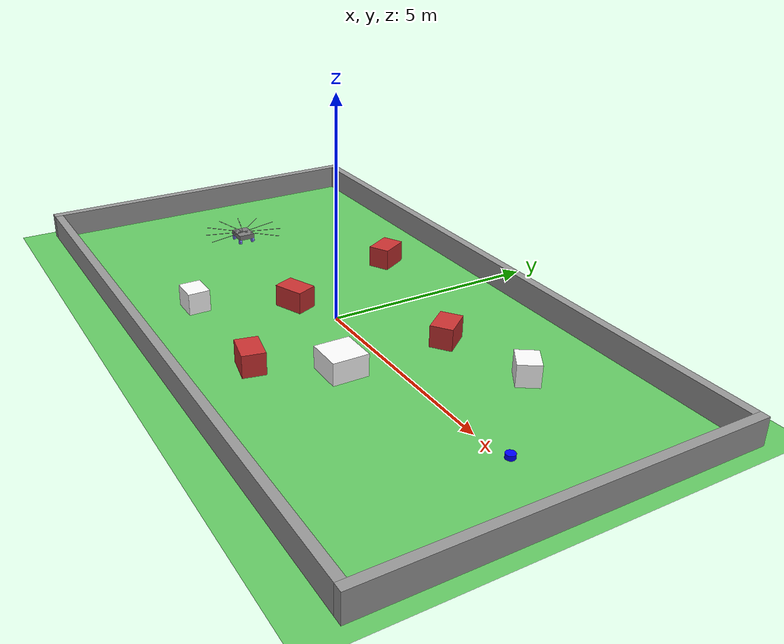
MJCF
<mujoco model="safe_drive_env">
    <compiler angle="degree" coordinate="local" autolimits="true" />
    <option timestep="0.01" gravity="0 0 -9.8" />
    <asset>
        <!-- Checker texture: green and white -->
        <texture name="field" type="2d" builtin="checker" width="512" height="512"
             rgb1="0.1 0.5 0.1" rgb2="0.2 0.6 0.2" />
        <material name="field_mat" texture="field" texrepeat="10 6" />
    </asset>
    <default>
        <default class="wheel">
            <geom type="cylinder" size=".06 .03" rgba=".5 .5 1 1" friction="5 0.1 0.1"/>
        </default>
        <default class="rangefinder">
            <site type="capsule" size=".005 .1"/>
        </default>
    </default>
    <worldbody>
        <!-- Static Objects -->
        <geom name="floor" type="plane" size="8 5 0.1" rgba="0.4 0.8 0.4 1" material="field_mat" />
        <!-- The left wall is centered at z=0.1, so it's z position ranges from z=0 to z=0.2 -->
        <!-- The left wall is 0.2 m in length, 8.2 m in width, 0.2 m in height -->
        <geom name="wall_left" type="box" size="0.1 4.2 0.3" rgba="0.6 0.6 0.6 1" pos="-7.6 0 0.3" />
        <geom name="wall_right" type="box" size="0.1 4.2 0.3" rgba="0.6 0.6 0.6 1" pos="7.6 0 0.3" />
        <geom name="wall_bottom" type="box" size="7.5 0.1 0.3" rgba="0.6 0.6 0.6 1" pos="0 -4.1 0.3" />
        <geom name="wall_top" type="box" size="7.5 0.1 0.3" rgba="0.6 0.6 0.6 1" pos="0 4.1 0.3" />
        <geom name="brick1" type="box" size="0.35 0.25 0.25" pos="2 1.5 0.25" quat="0.5 0 0 1" rgba="0.8 0.2 0.2 1" contype="1" conaffinity="1" mass="100" />
        <geom name="brick2" type="box" size="0.35 0.25 0.25" pos="1 -2.5 0.25" quat="0.1 0 0 1" rgba="0.8 0.2 0.2 1" contype="1" conaffinity="1" mass="100"/>
        <geom name="brick3" type="box" size="0.35 0.25 0.25" pos="-1 -0.5 0.25" quat="-0.2 0 0 1" rgba="0.8 0.2 0.2 1" contype="1" conaffinity="1" mass="100"/>
        <geom name="brick4" type="box" size="0.35 0.25 0.25" pos="-2 2.5 0.25" quat="0.6 0 0 1" rgba="0.8 0.2 0.2 1" contype="1" conaffinity="1" mass="100"/>
        <site name="target_site" pos="6 0 0.2" size="0.1 0.05" rgba="0 0 1 1" type="cylinder"/>
        <!-- Random Obstacles -->
        <body name="rand_box1_body" pos="2 -1 0.25">
            <geom name="rand_box1" type="box" size="0.4 0.4 0.25" rgba="1 1 1 1"
          contype="1" conaffinity="1" mass="100"
          solref="0.02 1" solimp="0.9 0.95 0.001"/>
        </body>
        <body name="rand_box2_body" pos="4 2 0.25">
            <geom name="rand_box2" type="box" size="0.3 0.25 0.25" rgba="1 1 1 1"
          contype="1" conaffinity="1" mass="100"
          solref="0.02 1" solimp="0.9 0.95 0.001" quat="0.3 0 0 1"/>
        </body>
        <body name="rand_box3_body" pos="-2 -2.5 0.25">
            <geom name="rand_box3" type="box" size="0.3 0.25 0.25" rgba="1 1 1 1"
          contype="1" conaffinity="1" mass="100"
          solref="0.02 1" solimp="0.9 0.95 0.001"/>
        </body>
        <!-- Car -->
        <body name="car" pos="-5 0 0">
            <freejoint />
            <site name="rf_1"  class="rangefinder" fromto="0 0 0.24 0.0707  -0.0707  0.24"/>
            <site name="rf_2"  class="rangefinder" fromto="0 0 0.24 0.259   -0.966    0.24"/>
            <site name="rf_3"  class="rangefinder" fromto="0 0 0.24 -0.259   -0.966  0.24"/>
            <site name="rf_4"  class="rangefinder" fromto="0 0 0.24 -0.707 -0.707    0.24"/>
            <site name="rf_5"  class="rangefinder" fromto="0 0 0.24 -0.966 -0.259  0.24"/>
            <site name="rf_6"  class="rangefinder" fromto="0 0 0.24 -0.966 0.259  0.24"/>
            <site name="rf_7"  class="rangefinder" fromto="0 0 0.24  -0.707 0.707  0.24"/>
            <site name="rf_8"  class="rangefinder" fromto="0 0 0.24  -0.259 0.966  0.24"/>
            <site name="rf_9"  class="rangefinder" fromto="0 0 0.24  0.259 0.966 0.24"/>
            <site name="rf_10" class="rangefinder" fromto="0 0 0.24  0.707 0.707 0.24"/>
            <geom name="chassis" type="box" size="0.25 0.2 0.06" rgba="0.5 0.5 0.5 1" pos="0 0 0.18" mass="17"/>
            <body name="front_left_wheel" pos="0.19 0.17 0.06" zaxis="0 1 0">
                <geom class="wheel"/>
                <joint name="front_left" type="hinge" axis="0 0 1" />
            </body>
            <body name="front_right_wheel" pos="0.19 -0.17 0.06" zaxis="0 1 0">
                <geom class="wheel"/>
                <joint name="front_right" type="hinge" axis="0 0 1" />
            </body>
            <body name="back_left_wheel" pos="-0.19 0.17 0.06" zaxis="0 1 0">
                <geom class="wheel" />
                <joint name="back_left" type="hinge" axis="0 0 1" />
            </body>
            <body name="back_right_wheel" pos="-0.19 -0.17 0.06" zaxis="0 1 0">
                <geom class="wheel" />
                <joint name="back_right" type="hinge" axis="0 0 1" />
            </body>
        </body>
    </worldbody>
    <tendon>
        <fixed name="forward">
            <joint joint="front_left" coef="2" />
            <joint joint="front_right" coef="2" />
            <joint joint="back_left" coef="2" />
            <joint joint="back_right" coef="2" />
        </fixed>
        <fixed name="turn">
            <joint joint="front_left" coef="-2" />
            <joint joint="front_right" coef="2" />
            <joint joint="back_left" coef="-2" />
            <joint joint="back_right" coef="2" />
        </fixed>
    </tendon>
    <actuator>
        <motor name="forward" tendon="forward" ctrlrange="-1 1" />
        <motor name="turn" tendon="turn" ctrlrange="-1 1" />
    </actuator>
    <sensor>
        <rangefinder name="rf_1" site="rf_1" />
        <rangefinder name="rf_2" site="rf_2" />
        <rangefinder name="rf_3" site="rf_3" />
        <rangefinder name="rf_4" site="rf_4" />
        <rangefinder name="rf_5" site="rf_5" />
        <rangefinder name="rf_6" site="rf_6" />
        <rangefinder name="rf_7" site="rf_7" />
        <rangefinder name="rf_8" site="rf_8" />
        <rangefinder name="rf_9" site="rf_9" />
        <rangefinder name="rf_10" site="rf_10" />
    </sensor>
</mujoco>
